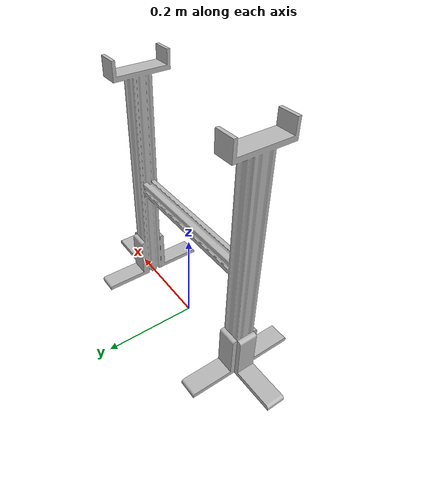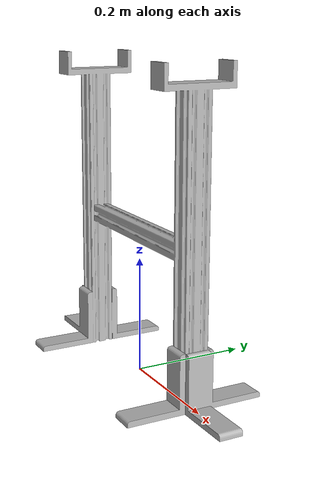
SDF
<sdf version='1.7'>
  <model name='stand'>
    <joint name='fixed' type='fixed'>
      <pose relative_to='__model__'>0 0 0 0 -0 0</pose>
      <parent>world</parent>
      <child>stand_link</child>
    </joint>
    <link name='stand_link'>
      <pose relative_to='fixed'>0 0 0 0 -0 0</pose>
      <inertial>
        <pose>0 0 0 0 -0 0</pose>
        <mass>1</mass>
        <inertia>
          <ixx>100</ixx>
          <ixy>0</ixy>
          <ixz>0</ixz>
          <iyy>100</iyy>
          <iyz>0</iyz>
          <izz>100</izz>
        </inertia>
      </inertial>
      <collision name='stand_link_collision'>
        <pose>0 0 0 0 -0 0</pose>
        <geometry>
          <mesh>
            <scale>1 1 1</scale>
            <uri>file:///home/pratik/Music/sdp/solo12_robot/solo12_description/meshes/collision/stand.stl</uri>
          </mesh>
        </geometry>
      </collision>
      <visual name='stand_link_visual'>
        <pose>0 0 0 0 -0 0</pose>
        <geometry>
          <mesh>
            <scale>1 1 1</scale>
            <uri>file:///home/pratik/Music/sdp/solo12_robot/solo12_description/meshes/collision/stand.stl</uri>
          </mesh>
        </geometry>
      </visual>
    </link>
  </model>
</sdf>
